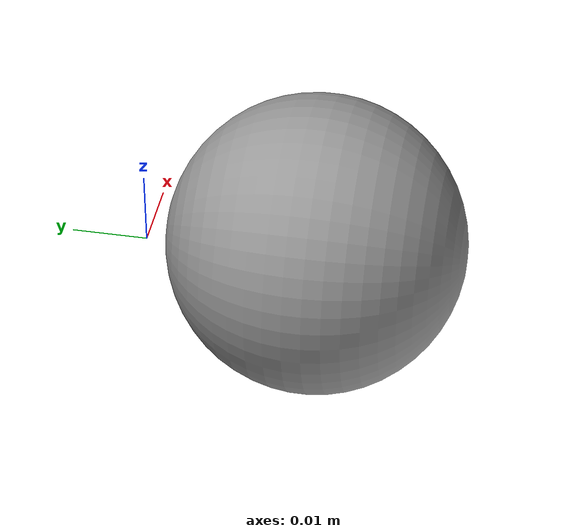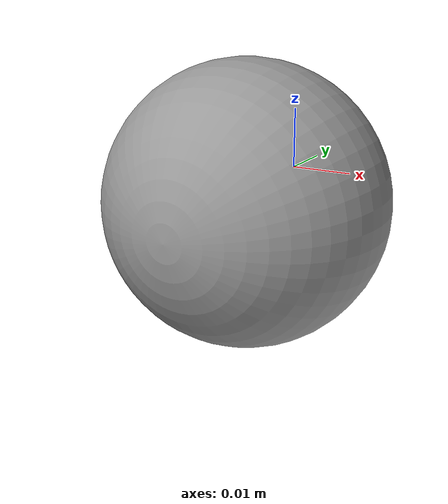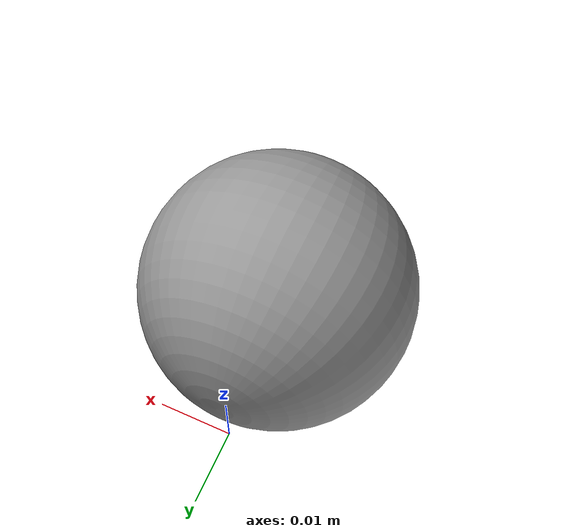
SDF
<?xml version='1.0'?>
<sdf version='1.5'>
  <model name='unripe_ball'>
    <link name='link_0'>
      <pose frame=''>-0 0 0 0 0 0</pose>
      <!-- xyz="-0.029781 0.037265 2.4387" -->
      <inertial>
        <mass>1e-08</mass>
        <inertia>
          <ixx>0.166667</ixx>
          <ixy>0</ixy>
          <ixz>0</ixz>
          <iyy>0.166667</iyy>
          <iyz>0</iyz>
          <izz>0.166667</izz>
        </inertia>
        <pose frame=''>0 0 0 0 -0 0</pose>
      </inertial>
      <self_collide>0</self_collide>
      <kinematic>0</kinematic>
      <gravity>1</gravity>
      <visual name='visual'>
        <pose frame=''>0 0 0 0 -0 0</pose>
        <geometry>
          <mesh>
            <uri>model://unripe_ball/mesh/unripe_ball.STL</uri>
            <scale>1 1 1</scale>
          </mesh>
        </geometry>
        <material>
          <lighting>1</lighting>
          <script>
            <uri>file://media/materials/scripts/gazebo.material</uri>
            <name>Gazebo/Grey</name>
          </script>
          <ambient>0.3 0.3 0.3 1</ambient>
          <diffuse>0.7 0.7 0.7 1</diffuse>
          <specular>0.01 1 0.01 1</specular>
          <emissive>0 1 0 1</emissive>
          <shader type='vertex'>
            <normal_map>__default__</normal_map>
          </shader>
        </material>
        <cast_shadows>1</cast_shadows>
        <transparency>0</transparency>
      </visual>
    </link>
    <static>1</static>
    <allow_auto_disable>1</allow_auto_disable>
  </model>
</sdf>
